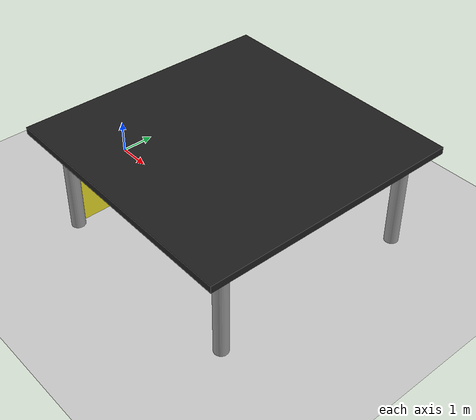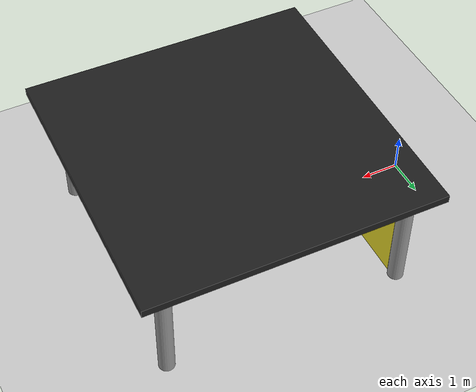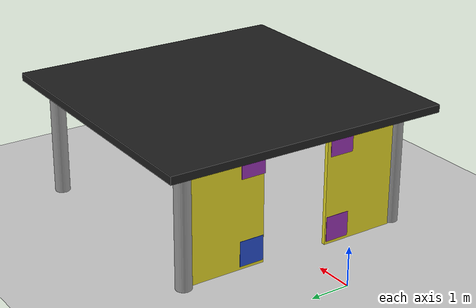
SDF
<sdf version="1.4">
 <world name="default">
  <light name="sun" type="directional">
   <pose>0 0 10 0 -0 0</pose>
   <diffuse>0.8 0.8 0.8 1</diffuse>
   <specular>0.2 0.2 0.2 1</specular>
   <attenuation>
    <range>1000</range>
    <constant>0.9</constant>
    <linear>0.01</linear>
    <quadratic>0.001</quadratic>
   </attenuation>
   <direction>-0.5 0.1 -0.9</direction>
  </light>
  <model name="ground_plane">
   <static>1</static>
   <link name="link">
    <collision name="collision">
     <geometry><plane><normal>0 0 1</normal><size>100 100</size></plane></geometry>
     <surface><friction><ode><mu>100</mu><mu2>50</mu2></ode></friction></surface>
    </collision>
    <visual name="visual">
     <cast_shadows>0</cast_shadows>
     <geometry><plane><normal>0 0 1</normal><size>100 100</size></plane></geometry>
     <material>
      <script><uri>file://media/materials/scripts/gazebo.material</uri><name>Gazebo/Grey</name></script>
     </material>
    </visual>
    <velocity_decay><linear>0</linear><angular>0</angular></velocity_decay>
   </link>
  </model>
  <physics type="ode">
   <max_step_size>0.001</max_step_size>
   <real_time_factor>1</real_time_factor>
   <real_time_update_rate>1000</real_time_update_rate>
   <gravity>0 0 -9.8</gravity>
  </physics>
  <scene><ambient>0.4 0.4 0.4 1</ambient><background>0.7 0.7 0.7 1</background><shadows>1</shadows></scene>
  <model name="unit_cylinder_1">
   <pose>1.96766 3.14233 1.5 -8.27181e-25 -1e-06 -0.004344</pose>
   <link name="link">
    <inertial>
     <mass>1</mass>
     <inertia><ixx>1</ixx><ixy>0</ixy><ixz>0</ixz><iyy>1</iyy><iyz>0</iyz><izz>1</izz></inertia>
    </inertial>
    <collision name="collision">
     <geometry><cylinder><radius>0.2</radius><length>3</length></cylinder></geometry>
    </collision>
    <visual name="visual">
     <geometry><cylinder><radius>0.2</radius><length>3</length></cylinder></geometry>
     <material>
      <script><uri>file://media/materials/scripts/gazebo.material</uri><name>Gazebo/Grey</name></script>
     </material>
    </visual>
    <velocity_decay><linear>0</linear><angular>0</angular></velocity_decay>
   </link>
   <static>0</static>
  </model>
  <model name="unit_cylinder_1_1">
   <pose>8.12262 3.09892 1.49732 -2.3e-05 4e-06 0.003014</pose>
   <link name="link">
    <inertial>
     <mass>1</mass>
     <inertia><ixx>1</ixx><ixy>0</ixy><ixz>0</ixz><iyy>1</iyy><iyz>0</iyz><izz>1</izz></inertia>
    </inertial>
    <collision name="collision">
     <geometry><cylinder><radius>0.2</radius><length>3</length></cylinder></geometry>
    </collision>
    <visual name="visual">
     <geometry><cylinder><radius>0.2</radius><length>3</length></cylinder></geometry>
     <material>
      <script><uri>file://media/materials/scripts/gazebo.material</uri><name>Gazebo/Grey</name></script>
     </material>
    </visual>
    <velocity_decay><linear>0</linear><angular>0</angular></velocity_decay>
   </link>
   <static>0</static>
  </model>
  <model name="unit_cylinder_4">
   <pose>8.06778 -2.94919 1.49734 2.8e-05 -6e-06 -2e-06</pose>
   <link name="link">
    <inertial>
     <mass>1</mass>
     <inertia><ixx>1</ixx><ixy>0</ixy><ixz>0</ixz><iyy>1</iyy><iyz>0</iyz><izz>1</izz></inertia>
    </inertial>
    <collision name="collision">
     <geometry><cylinder><radius>0.2</radius><length>3</length></cylinder></geometry>
    </collision>
    <visual name="visual">
     <geometry><cylinder><radius>0.2</radius><length>3</length></cylinder></geometry>
     <material>
      <script><uri>file://media/materials/scripts/gazebo.material</uri><name>Gazebo/Grey</name></script>
     </material>
    </visual>
    <velocity_decay><linear>0</linear><angular>0</angular></velocity_decay>
   </link>
   <static>0</static>
  </model>
  <model name="unit_cylinder_7">
   <pose>1.98845 -2.97913 1.5 0 0 -0.000897</pose>
   <link name="link">
    <inertial>
     <mass>1</mass>
     <inertia><ixx>1</ixx><ixy>0</ixy><ixz>0</ixz><iyy>1</iyy><iyz>0</iyz><izz>1</izz></inertia>
    </inertial>
    <collision name="collision">
     <geometry><cylinder><radius>0.2</radius><length>3</length></cylinder></geometry>
    </collision>
    <visual name="visual">
     <geometry><cylinder><radius>0.2</radius><length>3</length></cylinder></geometry>
     <material>
      <script><uri>file://media/materials/scripts/gazebo.material</uri><name>Gazebo/Grey</name></script>
     </material>
    </visual>
    <velocity_decay><linear>0</linear><angular>0</angular></velocity_decay>
   </link>
   <static>0</static>
  </model>
  <model name="unit_box_2_0">
   <pose>5.04477 0.00998 3.09872 -1.6e-05 0.000437 -0.011792</pose>
   <link name="link">
    <inertial>
     <mass>1</mass>
     <inertia><ixx>1</ixx><ixy>0</ixy><ixz>0</ixz><iyy>1</iyy><iyz>0</iyz><izz>1</izz></inertia>
    </inertial>
    <collision name="collision"><geometry><box><size>7.5 7.5 0.2</size></box></geometry></collision>
    <visual name="visual">
     <geometry><box><size>7.5 7.5 0.2</size></box></geometry>
     <material>
      <script><uri>file://media/materials/scripts/gazebo.material</uri><name>Gazebo/Black</name></script>
     </material>
    </visual>
    <velocity_decay><linear>0</linear><angular>0</angular></velocity_decay>
   </link>
   <static>0</static>
  </model>
  <model name="unit_box_1">
   <pose>1.88924 -1.77986 1.49996 0 -1e-06 0.004663</pose>
   <link name="link">
    <inertial>
     <mass>1</mass>
     <inertia><ixx>1</ixx><ixy>0</ixy><ixz>0</ixz><iyy>1</iyy><iyz>0</iyz><izz>1</izz></inertia>
    </inertial>
    <collision name="collision"><geometry><box><size>0.1 2 3</size></box></geometry></collision>
    <visual name="visual">
     <geometry><box><size>0.1 2 3</size></box></geometry>
     <material>
      <script><uri>file://media/materials/scripts/gazebo.material</uri><name>Gazebo/Yellow</name></script>
     </material>
    </visual>
    <velocity_decay><linear>0</linear><angular>0</angular></velocity_decay>
   </link>
   <static>0</static>
  </model>
  <model name="unit_box_2">
   <pose>2.01905 1.94239 1.49994 2e-06 -8.27181e-25 0.001468</pose>
   <link name="link">
    <inertial>
     <mass>1</mass>
     <inertia><ixx>1</ixx><ixy>0</ixy><ixz>0</ixz><iyy>1</iyy><iyz>0</iyz><izz>1</izz></inertia>
    </inertial>
    <collision name="collision"><geometry><box><size>0.1 2 3</size></box></geometry></collision>
    <visual name="visual">
     <geometry><box><size>0.1 2 3</size></box></geometry>
     <material>
      <script><uri>file://media/materials/scripts/gazebo.material</uri><name>Gazebo/Yellow</name></script>
     </material>
    </visual>
    <velocity_decay><linear>0</linear><angular>0</angular></velocity_decay>
   </link>
   <static>0</static>
  </model>
  <model name="tag_1_model">
   <static>1</static>
   <link name="link">
    <pose>0 0 1.4 0 -0 0</pose>
    <collision name="collision"><geometry><box><size>0.01 0.65 0.65</size></box></geometry></collision>
    <visual name="visual">
     <cast_shadows>0</cast_shadows>
     <geometry><box><size>0.01 0.65 0.65</size></box></geometry>
     <material>
      <script><uri>file://media/materials/scripts/gazebo.material</uri><name>Gazebo/Blue</name></script>
     </material>
    </visual>
    <velocity_decay><linear>0</linear><angular>0</angular></velocity_decay>
   </link>
   <pose>1.96329 1.28113 -1.0 0 -0 0</pose>
  </model>
  <model name="tag_2_model">
   <static>1</static>
   <link name="link">
    <pose>0 0 1.4 0 -0 0</pose>
    <collision name="collision"><geometry><box><size>0.01 0.65 0.65</size></box></geometry></collision>
    <visual name="visual">
     <cast_shadows>0</cast_shadows>
     <geometry><box><size>0.01 0.65 0.65</size></box></geometry>
     <material>
      <script><uri>file://media/materials/scripts/gazebo.material</uri><name>Gazebo/Purple</name></script>
     </material>
    </visual>
    <velocity_decay><linear>0</linear><angular>0</angular></velocity_decay>
   </link>
   <pose>1.82955 -1.14312 -1.0 0 -0 0</pose>
  </model>
  <model name="tag_3_model">
   <static>1</static>
   <link name="link">
    <pose>0 0 1.4 0 -0 0</pose>
    <collision name="collision"><geometry><box><size>0.01 0.65 0.65</size></box></geometry></collision>
    <visual name="visual">
     <cast_shadows>0</cast_shadows>
     <geometry><box><size>0.01 0.65 0.65</size></box></geometry>
     <material>
      <script><uri>file://media/materials/scripts/gazebo.material</uri><name>Gazebo/Purple</name></script>
     </material>
    </visual>
    <velocity_decay><linear>0</linear><angular>0</angular></velocity_decay>
   </link>
   <pose>1.78666 -1.16859 1.25 0 -0 0</pose>
  </model>
  <model name="tag_4_model">
   <static>1</static>
   <link name="link">
    <pose>0 0 1.4 0 -0 0</pose>
    <collision name="collision"><geometry><box><size>0.01 0.65 0.65</size></box></geometry></collision>
    <visual name="visual">
     <cast_shadows>0</cast_shadows>
     <geometry><box><size>0.01 0.65 0.65</size></box></geometry>
     <material>
      <script><uri>file://media/materials/scripts/gazebo.material</uri><name>Gazebo/Purple</name></script>
     </material>
    </visual>
    <velocity_decay><linear>0</linear><angular>0</angular></velocity_decay>
   </link>
   <pose>1.92915 1.267 1.25 0 -0 0</pose>
  </model>
 </world>
</sdf>
